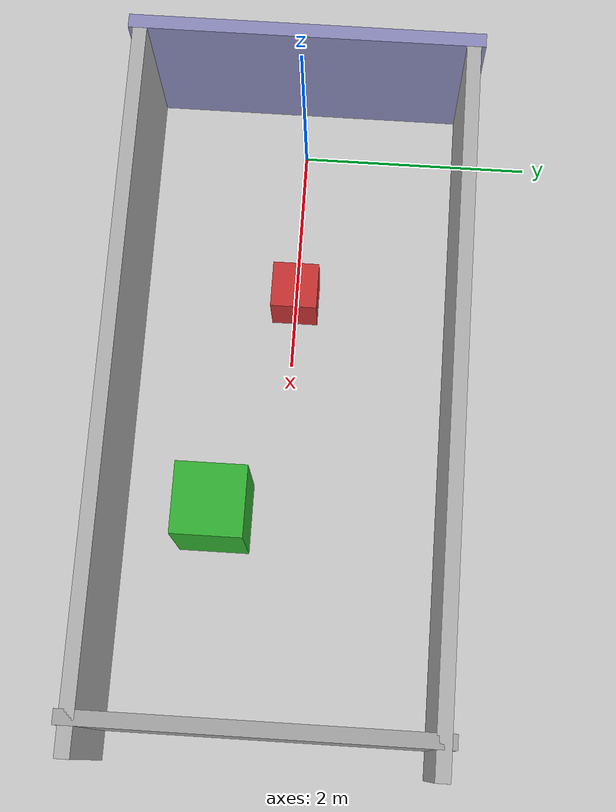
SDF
<?xml version="1.0" ?>
<sdf version="1.6">
  <world name="test_arena_stage9_fixed">
    <include>
      <uri>model://ground_plane</uri>
    </include>

    <include>
      <uri>model://sun</uri>
    </include>

    <model name="near_box">
      <static>true</static>
      <pose>1.4 0.0 0.25 0 0 0</pose>
      <link name="link">
        <collision name="collision">
          <geometry>
            <box>
              <size>0.4 0.4 0.5</size>
            </box>
          </geometry>
        </collision>
        <visual name="visual">
          <geometry>
            <box>
              <size>0.4 0.4 0.5</size>
            </box>
          </geometry>
          <material>
            <ambient>0.8 0.2 0.2 1</ambient>
            <diffuse>0.8 0.2 0.2 1</diffuse>
          </material>
        </visual>
      </link>
    </model>

    <model name="far_box">
      <static>true</static>
      <pose>3.4 -0.55 0.45 0 0 0</pose>
      <link name="link">
        <collision name="collision">
          <geometry>
            <box>
              <size>0.6 0.6 0.9</size>
            </box>
          </geometry>
        </collision>
        <visual name="visual">
          <geometry>
            <box>
              <size>0.6 0.6 0.9</size>
            </box>
          </geometry>
          <material>
            <ambient>0.2 0.7 0.2 1</ambient>
            <diffuse>0.2 0.7 0.2 1</diffuse>
          </material>
        </visual>
      </link>
    </model>

    <model name="left_wall">
      <static>true</static>
      <pose>2.5 1.4 0.75 0 0 0</pose>
      <link name="link">
        <collision name="collision">
          <geometry>
            <box>
              <size>6.0 0.12 1.5</size>
            </box>
          </geometry>
        </collision>
        <visual name="visual">
          <geometry>
            <box>
              <size>6.0 0.12 1.5</size>
            </box>
          </geometry>
          <material>
            <ambient>0.7 0.7 0.7 1</ambient>
            <diffuse>0.7 0.7 0.7 1</diffuse>
          </material>
        </visual>
      </link>
    </model>

    <model name="right_wall">
      <static>true</static>
      <pose>2.5 -1.4 0.75 0 0 0</pose>
      <link name="link">
        <collision name="collision">
          <geometry>
            <box>
              <size>6.0 0.12 1.5</size>
            </box>
          </geometry>
        </collision>
        <visual name="visual">
          <geometry>
            <box>
              <size>6.0 0.12 1.5</size>
            </box>
          </geometry>
          <material>
            <ambient>0.7 0.7 0.7 1</ambient>
            <diffuse>0.7 0.7 0.7 1</diffuse>
          </material>
        </visual>
      </link>
    </model>

    <model name="front_wall">
      <static>true</static>
      <pose>5.2 0.0 0.75 0 0 0</pose>
      <link name="link">
        <collision name="collision">
          <geometry>
            <box>
              <size>0.12 3.0 1.5</size>
            </box>
          </geometry>
        </collision>
        <visual name="visual">
          <geometry>
            <box>
              <size>0.12 3.0 1.5</size>
            </box>
          </geometry>
          <material>
            <ambient>0.65 0.65 0.65 1</ambient>
            <diffuse>0.65 0.65 0.65 1</diffuse>
          </material>
        </visual>
      </link>
    </model>

    <model name="missing_wall_stage9_fixed">
      <static>true</static>
      <pose>-0.5 0.0 0.75 0 0 0</pose>
      <link name="link">
        <collision name="collision">
          <geometry>
            <box>
              <size>0.12 3.0 1.5</size>
            </box>
          </geometry>
        </collision>
        <visual name="visual">
          <geometry>
            <box>
              <size>0.12 3.0 1.5</size>
            </box>
          </geometry>
          <material>
            <ambient>0.55 0.55 0.75 1</ambient>
            <diffuse>0.55 0.55 0.75 1</diffuse>
          </material>
        </visual>
      </link>
    </model>
  </world>
</sdf>
